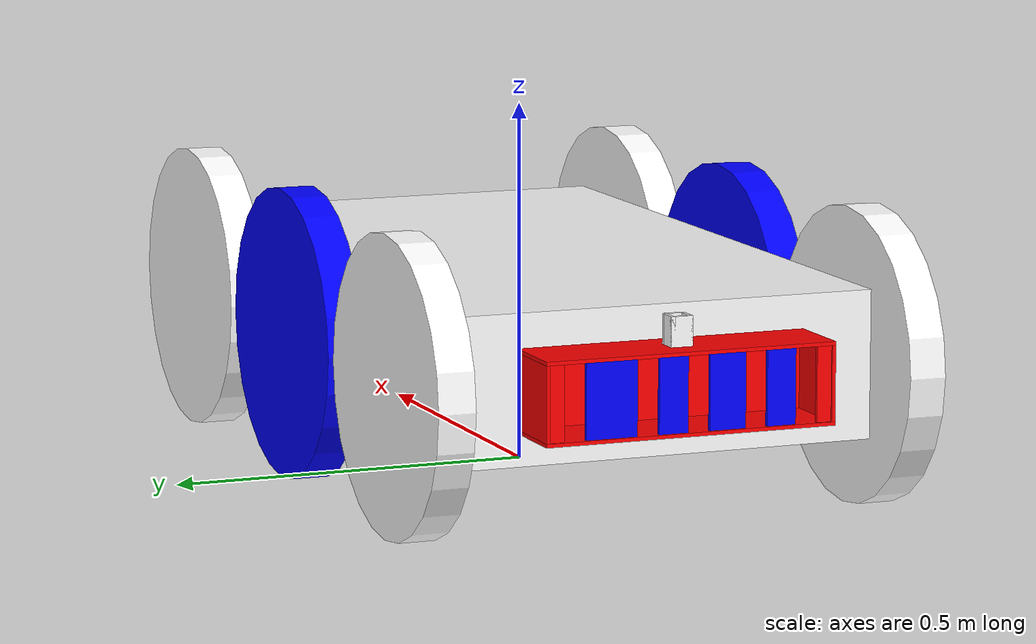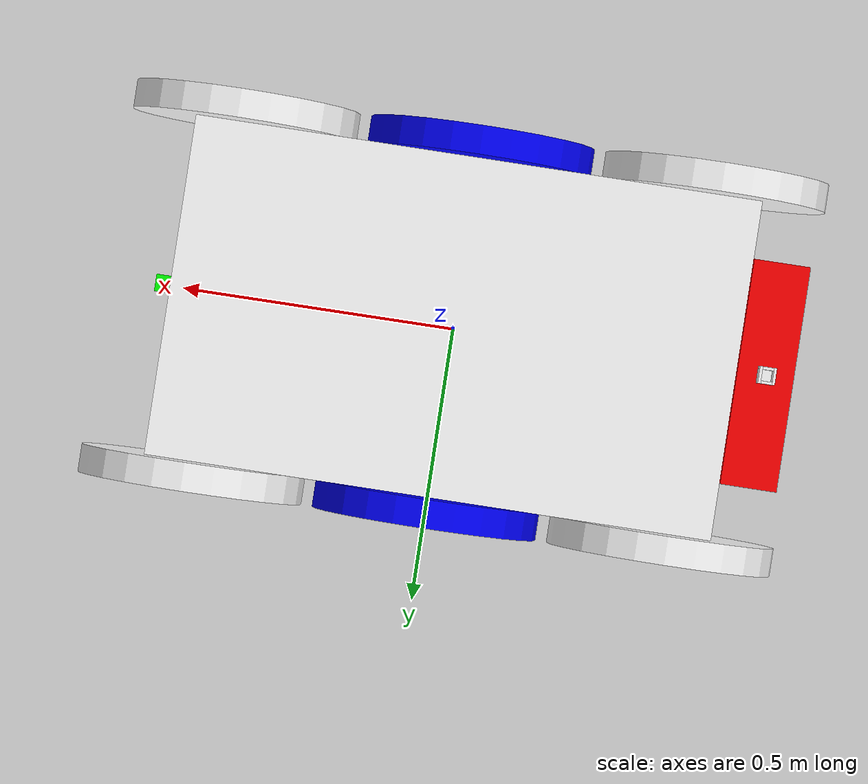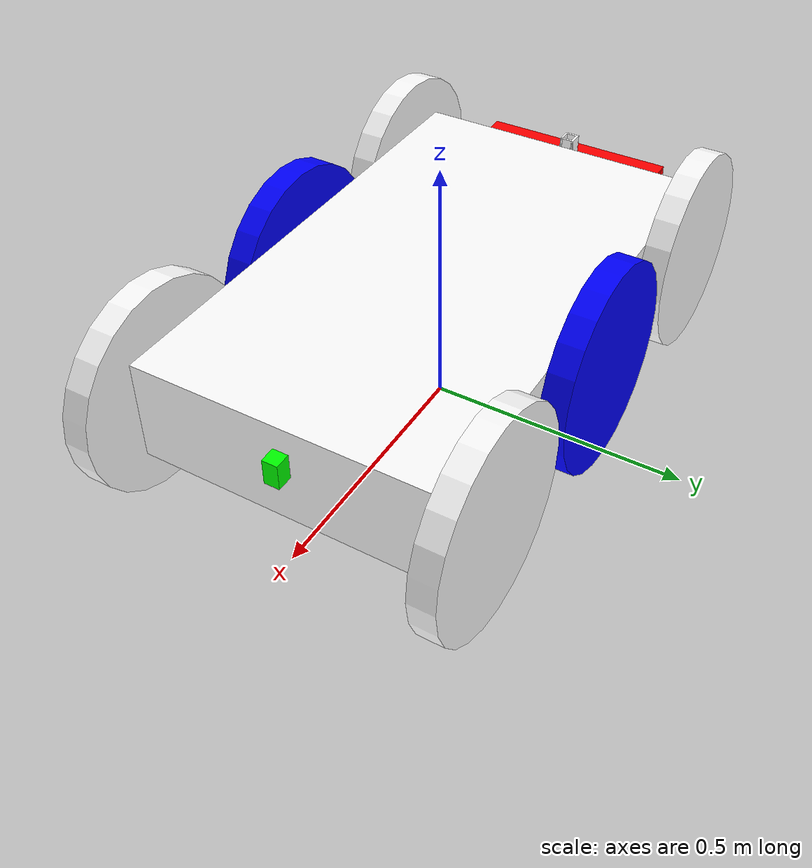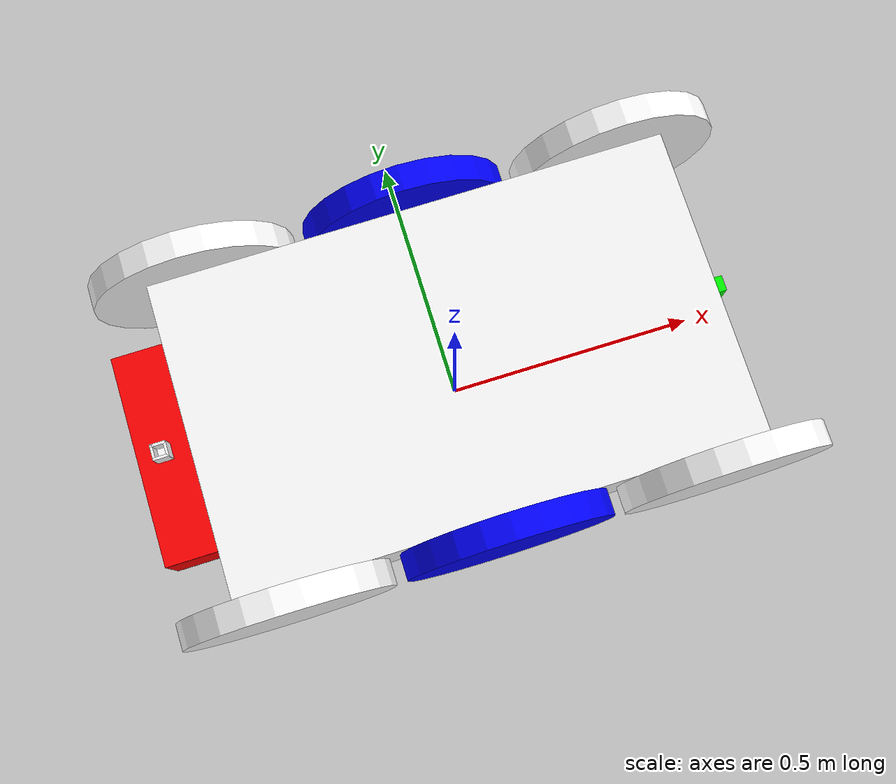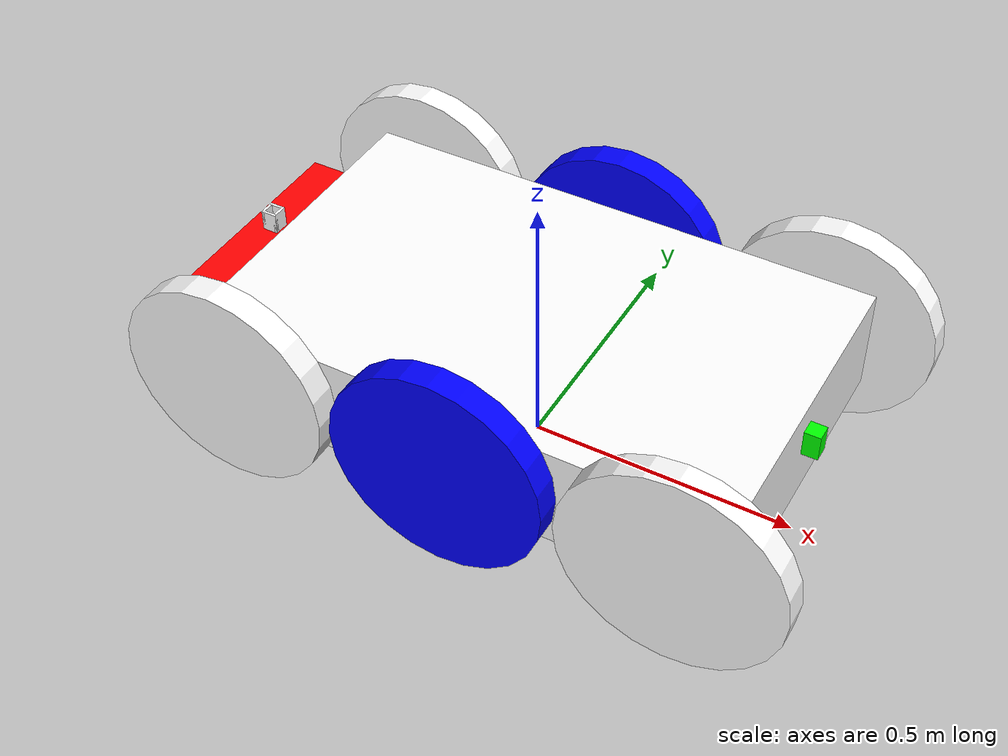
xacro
<?xml version="1.0"?>
<robot name="agv_model"
	xmlns:xacro="http://ros.org/wiki/xacro">

	<xacro:property name="M_PI" value="3.1415926" />
	<xacro:property name="H_PI" value="1.5707963" />

    <link name="agv_base_link">
        <visual>
                <geometry>
                    <box size="1e-6 1e-6 1e-6"/>
                </geometry>
            <origin xyz="0 0 0" rpy="0 0 0"/>
            <material name="white">
                <color rgba="1 1 1 1"/>
            </material>
        </visual>
        <collision>
            <geometry>
                    <box size="1e-6 1e-6 1e-6"/>
            </geometry>
        </collision>
        <inertial>
            <mass value="1e-6"/>
            <inertia ixx="1.0" ixy="0.0" ixz="0.0" iyy="1.0" iyz="0.0" izz="1.0"/>
        </inertial>
    </link>

    <link name="base_ment_link">
        <visual>
                <geometry>
                    <box size="1 0.6 0.2"/>
                </geometry>
            <origin xyz="0 0 0" rpy="0 0 0"/>
            <material name="white">
                <color rgba="1 1 1 1"/>
            </material>
        </visual>
        <collision>
            <geometry>
                    <box size="1 0.6 0.2"/>
            </geometry>
        </collision>
        <inertial>
            <mass value="1"/>
            <inertia ixx="1.0" ixy="0.0" ixz="0.0" iyy="1.0" iyz="0.0" izz="1.0"/>
        </inertial>
    </link>

    <joint name="base_ment_link_to_agv_baselink_joint" type="fixed">
        <parent link="agv_base_link"/>
        <child link="base_ment_link"/>
        <origin xyz="0 0 0.2" rpy="0 0 0"/>
    </joint>

    <link name="laser_link">
        <collision>
            <origin xyz="0 0 0.025" rpy="0 0 0" />
            <geometry>
                <box size="0.03 0.03 0.05" />
            </geometry>
        </collision>
        <visual>
            <origin xyz="0 0 0.025" rpy="0 0 0" />
            <geometry>
                <box size="0.03 0.03 0.05" />
            </geometry>
            <material name="green">
                <color rgba="0 1 0 1"/>
            </material>
        </visual>
        <inertial>
            <mass value="1e-5" />
            <origin xyz="0 0 0" rpy="0 0 0" />
            <inertia ixx="1e-6" ixy="0" ixz="0" iyy="1e6" iyz="0" izz="1e-6" />
        </inertial>
    </link>

    <joint name="laser_joint" type="fixed">
        <origin xyz="0.515 0 0" rpy=" 0 0 0" />
        <parent link="base_ment_link" />
        <child link="laser_link" />
    </joint>

    <link name="charge_base_link">
        <collision>
            <origin xyz="0 0 0" rpy="0 0 0" />
            <geometry>
                <box size="1e-6 1e-6 1e-6" />
            </geometry>
        </collision>
        <visual>
            <origin xyz="0 0 0" rpy="0 0 0" />
            <geometry>
                <box size="1e-6 1e-6 1e-6" />
            </geometry>
            <material name="red">
                <color rgba="1 0 0 1"/>
            </material>
        </visual>
        <inertial>
            <mass value="1e-5" />
            <origin xyz="0 0 0" rpy="0 0 0" />
            <inertia ixx="1e-6" ixy="0" ixz="0" iyy="1e6" iyz="0" izz="1e-6" />
        </inertial>
    </link>

    <joint name="charge_base_link_to_base_ment_link_joint" type="fixed">
        <origin xyz="-0.5 0 0" rpy=" 0 0 0" />
        <parent link="base_ment_link" />
        <child link="charge_base_link" />
    </joint>

    <link name="box_top_link">
        <collision>
            <origin xyz="0 0 0" rpy="0 0 0" />
            <geometry>
                <box size="0.1 0.4 0.005" />
            </geometry>
        </collision>
        <visual>
            <origin xyz="0 0 0" rpy="0 0 0" />
            <geometry>
                <box size="0.1 0.4 0.005" />
            </geometry>
            <material name="red">
                <color rgba="1 0 0 1"/>
            </material>
        </visual>
        <inertial>
            <mass value="1e-5" />
            <origin xyz="0 0 0" rpy="0 0 0" />
            <inertia ixx="1e-6" ixy="0" ixz="0" iyy="1e6" iyz="0" izz="1e-6" />
        </inertial>
    </link>

    <joint name="box_top_link_to_charge_base_link_joint" type="fixed">
        <origin xyz="-0.055 0 0.0525" rpy=" 0 0 0" />
        <parent link="charge_base_link" />
        <child link="box_top_link" />
    </joint>

    <link name="box_bottom_link">
        <collision>
            <origin xyz="0 0 0" rpy="0 0 0" />
            <geometry>
                <box size="0.1 0.4 0.005" />
            </geometry>
        </collision>
        <visual>
            <origin xyz="0 0 0" rpy="0 0 0" />
            <geometry>
                <box size="0.1 0.4 0.005" />
            </geometry>
            <material name="red">
                <color rgba="1 0 0 1"/>
            </material>
        </visual>
        <inertial>
            <mass value="1e-5" />
            <origin xyz="0 0 0" rpy="0 0 0" />
            <inertia ixx="1e-6" ixy="0" ixz="0" iyy="1e6" iyz="0" izz="1e-6" />
        </inertial>
    </link>

    <joint name="box_bottom_link_to_charge_base_link_joint" type="fixed">
        <origin xyz="-0.055 0 -0.0525" rpy=" 0 0 0" />
        <parent link="charge_base_link" />
        <child link="box_bottom_link" />
    </joint>

    <link name="box_left_link">
        <collision>
            <origin xyz="0 0 0" rpy="0 0 0" />
            <geometry>
                <box size="0.1 0.005 0.1" />
            </geometry>
        </collision>
        <visual>
            <origin xyz="0 0 0" rpy="0 0 0" />
            <geometry>
                <box size="0.1 0.005 0.1" />
            </geometry>
            <material name="red">
                <color rgba="1 0 0 1"/>
            </material>
        </visual>
        <inertial>
            <mass value="1e-5" />
            <origin xyz="0 0 0" rpy="0 0 0" />
            <inertia ixx="1e-6" ixy="0" ixz="0" iyy="1e6" iyz="0" izz="1e-6" />
        </inertial>
    </link>

    <joint name="box_left_link_to_charge_base_link_joint" type="fixed">
        <origin xyz="-0.055 0.1975 0" rpy=" 0 0 0" />
        <parent link="charge_base_link" />
        <child link="box_left_link" />
    </joint>

    <link name="box_right_link">
        <collision>
            <origin xyz="0 0 0" rpy="0 0 0" />
            <geometry>
                <box size="0.1 0.005 0.1" />
            </geometry>
        </collision>
        <visual>
            <origin xyz="0 0 0" rpy="0 0 0" />
            <geometry>
                <box size="0.1 0.005 0.1" />
            </geometry>
            <material name="red">
                <color rgba="1 0 0 1"/>
            </material>
        </visual>
        <inertial>
            <mass value="1e-5" />
            <origin xyz="0 0 0" rpy="0 0 0" />
            <inertia ixx="1e-6" ixy="0" ixz="0" iyy="1e6" iyz="0" izz="1e-6" />
        </inertial>
    </link>

    <joint name="box_right_link_to_charge_base_link_joint" type="fixed">
        <origin xyz="-0.055 -0.1975 0" rpy=" 0 0 0" />
        <parent link="charge_base_link" />
        <child link="box_right_link" />
    </joint>

    <link name="box_back_link">
        <collision>
            <origin xyz="0 0 0" rpy="0 0 0" />
            <geometry>
                <box size="0.005 0.4 0.1" />
            </geometry>
        </collision>
        <visual>
            <origin xyz="0 0 0" rpy="0 0 0" />
            <geometry>
                <box size="0.005 0.4 0.1" />
            </geometry>
            <material name="red">
                <color rgba="1 0 0 1"/>
            </material>
        </visual>
        <inertial>
            <mass value="1e-5" />
            <origin xyz="0 0 0" rpy="0 0 0" />
            <inertia ixx="1e-6" ixy="0" ixz="0" iyy="1e6" iyz="0" izz="1e-6" />
        </inertial>
    </link>

    <joint name="box_back_link_to_charge_base_link_joint" type="fixed">
        <origin xyz="-0.0025 0 0" rpy=" 0 0 0" />
        <parent link="charge_base_link" />
        <child link="box_back_link" />
    </joint>

    <link name="baffle_A_link">
        <collision>
            <origin xyz="0 0 0" rpy="0 0 0" />
            <geometry>
                <box size="0.005 0.04 0.1" />
            </geometry>
        </collision>
        <visual>
            <origin xyz="0 0 0" rpy="0 0 0" />
            <geometry>
                <box size="0.005 0.04 0.1" />
            </geometry>
            <material name="blue">
                <color rgba="0 0 1 1"/>
            </material>
        </visual>
        <inertial>
            <mass value="1e-5" />
            <origin xyz="0 0 0" rpy="0 0 0" />
            <inertia ixx="1e-6" ixy="0" ixz="0" iyy="1e6" iyz="0" izz="1e-6" />
        </inertial>
    </link>

    <joint name="baffle_A_link_to_charge_base_link_joint" type="fixed">
        <origin xyz="-0.1 -0.125 0" rpy=" 0 0 0" />
        <parent link="charge_base_link" />
        <child link="baffle_A_link" />
    </joint>

    <link name="baffle_B_link">
        <collision>
            <origin xyz="0 0 0" rpy="0 0 0" />
            <geometry>
                <box size="0.005 0.05 0.1" />
            </geometry>
        </collision>
        <visual>
            <origin xyz="0 0 0" rpy="0 0 0" />
            <geometry>
                <box size="0.005 0.05 0.1" />
            </geometry>
            <material name="blue">
                <color rgba="0 0 1 1"/>
            </material>
        </visual>
        <inertial>
            <mass value="1e-5" />
            <origin xyz="0 0 0" rpy="0 0 0" />
            <inertia ixx="1e-6" ixy="0" ixz="0" iyy="1e6" iyz="0" izz="1e-6" />
        </inertial>
    </link>

    <joint name="baffle_B_link_to_charge_base_link_joint" type="fixed">
        <origin xyz="-0.1 -0.05 0" rpy=" 0 0 0" />
        <parent link="charge_base_link" />
        <child link="baffle_B_link" />
    </joint>

    <link name="baffle_C_link">
        <collision>
            <origin xyz="0 0 0" rpy="0 0 0" />
            <geometry>
                <box size="0.005 0.04 0.1" />
            </geometry>
        </collision>
        <visual>
            <origin xyz="0 0 0" rpy="0 0 0" />
            <geometry>
                <box size="0.005 0.04 0.1" />
            </geometry>
            <material name="blue">
                <color rgba="0 0 1 1"/>
            </material>
        </visual>
        <inertial>
            <mass value="1e-5" />
            <origin xyz="0 0 0" rpy="0 0 0" />
            <inertia ixx="1e-6" ixy="0" ixz="0" iyy="1e6" iyz="0" izz="1e-6" />
        </inertial>
    </link>

    <joint name="baffle_C_link_to_charge_base_link_joint" type="fixed">
        <origin xyz="-0.1 0.025 0" rpy=" 0 0 0" />
        <parent link="charge_base_link" />
        <child link="baffle_C_link" />
    </joint>

    <link name="baffle_D_link">
        <collision>
            <origin xyz="0 0 0" rpy="0 0 0" />
            <geometry>
                <box size="0.005 0.07 0.1" />
            </geometry>
        </collision>
        <visual>
            <origin xyz="0 0 0" rpy="0 0 0" />
            <geometry>
                <box size="0.005 0.07 0.1" />
            </geometry>
            <material name="blue">
                <color rgba="0 0 1 1"/>
            </material>
        </visual>
        <inertial>
            <mass value="1e-5" />
            <origin xyz="0 0 0" rpy="0 0 0" />
            <inertia ixx="1e-6" ixy="0" ixz="0" iyy="1e6" iyz="0" izz="1e-6" />
        </inertial>
    </link>

    <joint name="baffle_D_link_to_charge_base_link_joint" type="fixed">
        <origin xyz="-0.1 0.11 0" rpy=" 0 0 0" />
        <parent link="charge_base_link" />
        <child link="baffle_D_link" />
    </joint>

    <link name="baffle_left_link">
        <collision>
            <origin xyz="0 0 0" rpy="0 0 0" />
            <geometry>
                <box size="0.005 0.02 0.1" />
            </geometry>
        </collision>
        <visual>
            <origin xyz="0 0 0" rpy="0 0 0" />
            <geometry>
                <box size="0.005 0.02 0.1" />
            </geometry>
            <material name="red">
                <color rgba="1 0 0 1"/>
            </material>
        </visual>
        <inertial>
            <mass value="1e-5" />
            <origin xyz="0 0 0" rpy="0 0 0" />
            <inertia ixx="1e-6" ixy="0" ixz="0" iyy="1e6" iyz="0" izz="1e-6" />
        </inertial>
    </link>

    <joint name="baffle_left_link_to_charge_base_link_joint" type="fixed">
        <origin xyz="-0.1 0.185 0" rpy=" 0 0 0" />
        <parent link="charge_base_link" />
        <child link="baffle_left_link" />
    </joint>

    <link name="baffle_right_link">
        <collision>
            <origin xyz="0 0 0" rpy="0 0 0" />
            <geometry>
                <box size="0.005 0.02 0.1" />
            </geometry>
        </collision>
        <visual>
            <origin xyz="0 0 0" rpy="0 0 0" />
            <geometry>
                <box size="0.005 0.02 0.1" />
            </geometry>
            <material name="red">
                <color rgba="1 0 0 1"/>
            </material>
        </visual>
        <inertial>
            <mass value="1e-5" />
            <origin xyz="0 0 0" rpy="0 0 0" />
            <inertia ixx="1e-6" ixy="0" ixz="0" iyy="1e6" iyz="0" izz="1e-6" />
        </inertial>
    </link>

    <joint name="baffle_right_link_to_charge_base_link_joint" type="fixed">
        <origin xyz="-0.1 -0.185 0" rpy=" 0 0 0" />
        <parent link="charge_base_link" />
        <child link="baffle_right_link" />
    </joint>

    <link name="font_left_wheel_link">
        <visual>
                <geometry>
                    <cylinder length="0.05" radius="0.2"/>
                </geometry>
            <origin xyz="0 0 0" rpy="0 0 0"/>
            <material name="white">
                <color rgba="1 1 1 1"/>
            </material>
        </visual>
        <collision>
            <geometry>
                    <cylinder length="0.05" radius="0.2"/>
            </geometry>
        </collision>
        <inertial>
            <mass value="0.1"/>
            <inertia ixx="1.0" ixy="0.0" ixz="0.0" iyy="1.0" iyz="0.0" izz="1.0"/>
        </inertial>
    </link>

    <joint name="font_left_wheel_link_to_base_ment_link_joint" type="continuous">
        <parent link="base_ment_link"/>
        <child link="font_left_wheel_link"/>
        <origin xyz="0.42 0.325 0" rpy="-1.57 0 0"/>
        <axis xyz="0 0 1"/>
    </joint>

    <link name="font_right_wheel_link">
        <visual>
                <geometry>
                    <cylinder length="0.05" radius="0.2"/>
                </geometry>
            <origin xyz="0 0 0" rpy="0 0 0"/>
            <material name="white">
                <color rgba="1 1 1 1"/>
            </material>
        </visual>
        <collision>
            <geometry>
                    <cylinder length="0.05" radius="0.2"/>
            </geometry>
        </collision>
        <inertial>
            <mass value="0.1"/>
            <inertia ixx="1.0" ixy="0.0" ixz="0.0" iyy="1.0" iyz="0.0" izz="1.0"/>
        </inertial>
    </link>

    <joint name="font_right_wheel_link_to_base_ment_link_joint" type="continuous">
        <parent link="base_ment_link"/>
        <child link="font_right_wheel_link"/>
        <origin xyz="0.42 -0.325 0" rpy="-1.57 0 0"/>
        <axis xyz="0 0 1"/>
    </joint>

     <link name="middle_left_wheel_link">
        <visual>
                <geometry>
                    <cylinder length="0.05" radius="0.2"/>
                </geometry>
            <origin xyz="0 0 0" rpy="0 0 0"/>
            <material name="blue">
                <color rgba="0 0 1 1"/>
            </material>
        </visual>
        <collision>
            <geometry>
                    <cylinder length="0.05" radius="0.2"/>
            </geometry>
        </collision>
        <inertial>
            <mass value="0.1"/>
            <inertia ixx="1.0" ixy="0.0" ixz="0.0" iyy="1.0" iyz="0.0" izz="1.0"/>
        </inertial>
    </link>

    <joint name="middle_left_wheel_link_to_base_ment_link_joint" type="continuous">
        <parent link="base_ment_link"/>
        <child link="middle_left_wheel_link"/>
        <origin xyz="0 0.325 0" rpy="-1.57 0 0"/>
        <axis xyz="0 0 1"/>
    </joint>

    <link name="middle_right_wheel_link">
        <visual>
                <geometry>
                    <cylinder length="0.05" radius="0.2"/>
                </geometry>
            <origin xyz="0 0 0" rpy="0 0 0"/>
            <material name="blue">
                <color rgba="0 0 1 1"/>
            </material>
        </visual>
        <collision>
            <geometry>
                    <cylinder length="0.05" radius="0.2"/>
            </geometry>
        </collision>
        <inertial>
            <mass value="0.1"/>
            <inertia ixx="1.0" ixy="0.0" ixz="0.0" iyy="1.0" iyz="0.0" izz="1.0"/>
        </inertial>
    </link>

    <joint name="middle_right_wheel_link_to_base_ment_link_joint" type="continuous">
        <parent link="base_ment_link"/>
        <child link="middle_right_wheel_link"/>
        <origin xyz="0 -0.325 0" rpy="-1.57 0 0"/>
        <axis xyz="0 0 1"/>
    </joint>

     <link name="back_left_wheel_link">
        <visual>
                <geometry>
                    <cylinder length="0.05" radius="0.2"/>
                </geometry>
            <origin xyz="0 0 0" rpy="0 0 0"/>
            <material name="white">
                <color rgba="1 1 1 1"/>
            </material>
        </visual>
        <collision>
            <geometry>
                    <cylinder length="0.05" radius="0.2"/>
            </geometry>
        </collision>
        <inertial>
            <mass value="0.1"/>
            <inertia ixx="1.0" ixy="0.0" ixz="0.0" iyy="1.0" iyz="0.0" izz="1.0"/>
        </inertial>
    </link>

    <joint name="back_left_wheel_link_to_base_ment_link_joint" type="continuous">
        <parent link="base_ment_link"/>
        <child link="back_left_wheel_link"/>
        <origin xyz="-0.42 0.325 0" rpy="-1.57 0 0"/>
        <axis xyz="0 0 1"/>
    </joint>

    <link name="back_right_wheel_link">
        <visual>
                <geometry>
                    <cylinder length="0.05" radius="0.2"/>
                </geometry>
            <origin xyz="0 0 0" rpy="0 0 0"/>
            <material name="white">
                <color rgba="1 1 1 1"/>
            </material>
        </visual>
        <collision>
            <geometry>
                    <cylinder length="0.05" radius="0.2"/>
            </geometry>
        </collision>
        <inertial>
            <mass value="0.1"/>
            <inertia ixx="1.0" ixy="0.0" ixz="0.0" iyy="1.0" iyz="0.0" izz="1.0"/>
        </inertial>
    </link>

    <joint name="back_right_wheel_link_to_base_ment_link_joint" type="continuous">
        <parent link="base_ment_link"/>
        <child link="back_right_wheel_link"/>
        <origin xyz="-0.42 -0.325 0" rpy="-1.57 0 0"/>
        <axis xyz="0 0 1"/>
    </joint>

    <link name="charge_plugin_base_link">
        <visual>
                <geometry>
                    <box size="0 0 0"/>
                </geometry>
            <origin xyz="0 0 0" rpy="0 0 0"/>
            <material name="white">
                <color rgba="1 1 1 1"/>
            </material>
        </visual>
        <collision>
            <geometry>
                    <box size="0 0 0"/>
            </geometry>
        </collision>
        <inertial>
            <mass value="0.1"/>
            <inertia ixx="1.0" ixy="0.0" ixz="0.0" iyy="1.0" iyz="0.0" izz="1.0"/>
        </inertial>
    </link>

    <joint name="charge_plugin_base_link_to_charge_base_link_joint" type="fixed">
        <parent link="charge_base_link"/>
        <child link="charge_plugin_base_link"/>
        <origin xyz="-0.055 0 0.055" rpy="0 -1.57 0"/>
    </joint>

    <link name="charge_plugin_back_link">
        <visual>
                <geometry>
                    <box size="0.005 0.02 0.02"/>
                </geometry>
            <origin xyz="0 0 0" rpy="0 0 0"/>
            <material name="white">
                <color rgba="1 1 1 1"/>
            </material>
        </visual>
        <collision>
            <geometry>
                    <box size="0.005 0.02 0.02"/>
            </geometry>
        </collision>
        <inertial>
            <mass value="0.1"/>
            <inertia ixx="1.0" ixy="0.0" ixz="0.0" iyy="1.0" iyz="0.0" izz="1.0"/>
        </inertial>
    </link>

    <joint name="charge_plugin_back_link_to_charge_plugin_base_link_joint" type="fixed">
        <parent link="charge_plugin_base_link"/>
        <child link="charge_plugin_back_link"/>
        <origin xyz="0.0025 0 0" rpy="0 0 0"/>
    </joint>

    <link name="charge_plugin_top_link">
        <visual>
                <geometry>
                    <box size="0.04 0.03 0.005"/>
                </geometry>
            <origin xyz="0 0 0" rpy="0 0 0"/>
            <material name="white">
                <color rgba="1 1 1 1"/>
            </material>
        </visual>
        <collision>
            <geometry>
                    <box size="0.04 0.03 0.005"/>
            </geometry>
        </collision>
        <inertial>
            <mass value="0.1"/>
            <inertia ixx="1.0" ixy="0.0" ixz="0.0" iyy="1.0" iyz="0.0" izz="1.0"/>
        </inertial>
    </link>

    <joint name="charge_plugin_top_link_to_charge_plugin_base_link_joint" type="fixed">
        <parent link="charge_plugin_base_link"/>
        <child link="charge_plugin_top_link"/>
        <origin xyz="0.02 0 0.0125" rpy="0 0 0"/>
    </joint>

    <link name="charge_plugin_bottom_link">
        <visual>
                <geometry>
                    <box size="0.04 0.03 0.005"/>
                </geometry>
            <origin xyz="0 0 0" rpy="0 0 0"/>
            <material name="white">
                <color rgba="1 1 1 1"/>
            </material>
        </visual>
        <collision>
            <geometry>
                    <box size="0.04 0.03 0.005"/>
            </geometry>
        </collision>
        <inertial>
            <mass value="0.1"/>
            <inertia ixx="1.0" ixy="0.0" ixz="0.0" iyy="1.0" iyz="0.0" izz="1.0"/>
        </inertial>
    </link>

    <joint name="charge_plugin_bottom_link_to_charge_plugin_base_link_joint" type="fixed">
        <parent link="charge_plugin_base_link"/>
        <child link="charge_plugin_bottom_link"/>
        <origin xyz="0.02 0 -0.0125" rpy="0 0 0"/>
    </joint>

    <link name="charge_plugin_left_link">
        <visual>
                <geometry>
                    <box size="0.04 0.005 0.03"/>
                </geometry>
            <origin xyz="0 0 0" rpy="0 0 0"/>
            <material name="white">
                <color rgba="1 1 1 1"/>
            </material>
        </visual>
        <collision>
            <geometry>
                    <box size="0.04 0.005 0.03"/>
            </geometry>
        </collision>
        <inertial>
            <mass value="0.1"/>
            <inertia ixx="1.0" ixy="0.0" ixz="0.0" iyy="1.0" iyz="0.0" izz="1.0"/>
        </inertial>
    </link>

    <joint name="charge_plugin_left_link_to_charge_plugin_base_link_joint" type="fixed">
        <parent link="charge_plugin_base_link"/>
        <child link="charge_plugin_left_link"/>
        <origin xyz="0.02 0.0125 0" rpy="0 0 0"/>
    </joint>

    <link name="charge_plugin_right_link">
        <visual>
                <geometry>
                    <box size="0.04 0.005 0.03"/>
                </geometry>
            <origin xyz="0 0 0" rpy="0 0 0"/>
            <material name="white">
                <color rgba="1 1 1 1"/>
            </material>
        </visual>
        <collision>
            <geometry>
                    <box size="0.04 0.005 0.03"/>
            </geometry>
        </collision>
        <inertial>
            <mass value="0.1"/>
            <inertia ixx="1.0" ixy="0.0" ixz="0.0" iyy="1.0" iyz="0.0" izz="1.0"/>
        </inertial>
    </link>

    <joint name="charge_plugin_right_link_to_charge_plugin_base_link_joint" type="fixed">
        <parent link="charge_plugin_base_link"/>
        <child link="charge_plugin_right_link"/>
        <origin xyz="0.02 -0.0125 0" rpy="0 0 0"/>
    </joint>

</robot>
